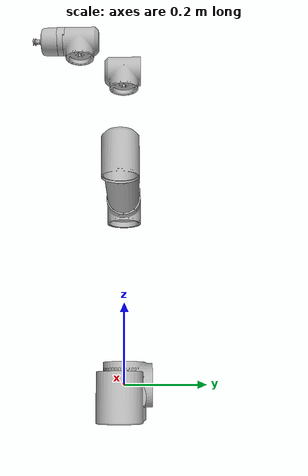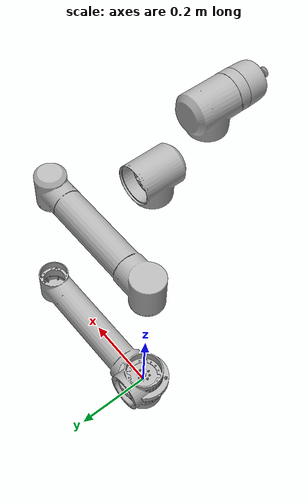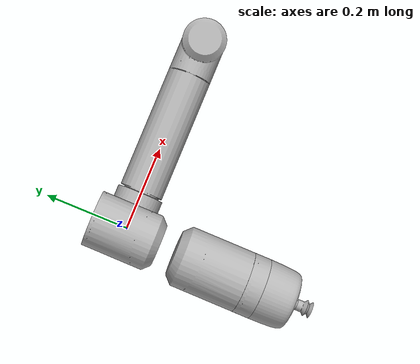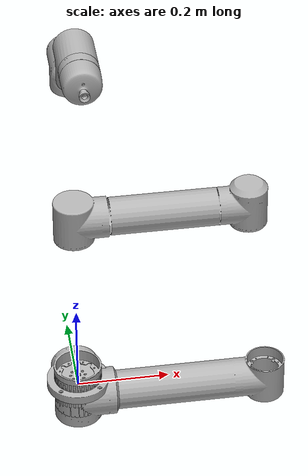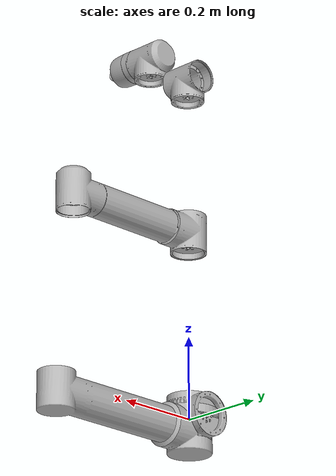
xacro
<?xml version='1.0' encoding='utf-8'?>
<robot xmlns:xacro="http://ros.org/wiki/xacro" name="utra6_850">

  <xacro:arg name="prefix" default=""/>
  <xacro:arg name="ros_namespace" default="utra"/>
  <xacro:arg name="limited" default="false"/>
  <xacro:arg name="effort_control" default="false"/>
  <xacro:arg name="attach_to_world" default="true"/>
  <xacro:arg name="add_gripper" default="true"/>

    <!-- utra6_850 -->
    <xacro:include filename="$(find utra_description)/urdf/utra6_850.urdf.xacro" />

    <xacro:if value="$(arg attach_to_world)">
      <link name="world" />
    </xacro:if>

    <joint name="$(arg prefix)world_joint" type="fixed">
      <parent link="world" />
      <child link = "$(arg prefix)base_link" />
      <origin xyz="0 0 0" rpy="0 0 0" />
    </joint>

    <xacro:if value="$(arg limited)">
      <xacro:utra6_850_urdf prefix="$(arg prefix)"
        joint1_lower_limit="${-2.0*pi}" joint1_upper_limit="${2.0*pi}"
        joint2_lower_limit="${-2.0*pi}" joint2_upper_limit="${2.0*pi}"
        joint3_lower_limit="${-2.0*pi}" joint3_upper_limit="${2.0*pi}"
        joint4_lower_limit="${-2.0*pi}" joint4_upper_limit="${2.0*pi}"
        joint5_lower_limit="${-2.0*pi}" joint5_upper_limit="${2.0*pi}"
        joint6_lower_limit="${-2.0*pi}" joint6_upper_limit="${2.0*pi}"/>
    </xacro:if>
    <xacro:unless value="$(arg limited)">
      <xacro:utra6_850_urdf prefix="$(arg prefix)"/>
    </xacro:unless>

  <xacro:include filename="$(find utra_description)/urdf/transmission.xacro" />

  <xacro:transmission_block joint_name="$(arg prefix)joint1"/>
  <xacro:transmission_block joint_name="$(arg prefix)joint2"/>
  <xacro:transmission_block joint_name="$(arg prefix)joint3"/>
  <xacro:transmission_block joint_name="$(arg prefix)joint4"/>
  <xacro:transmission_block joint_name="$(arg prefix)joint5"/>
  <xacro:transmission_block joint_name="$(arg prefix)joint6"/>

  <xacro:include filename="$(find utra_description)/urdf/utra6_850_common.gazebo.xacro" />

  <xacro:include filename="$(find utra_vacuum_gripper)/urdf/vacuum_gripper.urdf.xacro" />
  <xacro:vacuum_gripper prefix="$(arg prefix)" parent="$(arg prefix)link_6" >
      <origin xyz="0 0 -0.008" rpy="0 0 0"/>
  </xacro:vacuum_gripper>

</robot>

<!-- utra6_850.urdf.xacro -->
<robot xmlns:xacro="http://ros.org/wiki/xacro">

  <xacro:macro name="utra6_850_urdf" params="prefix
    joint1_lower_limit:=${-2.0*pi} joint1_upper_limit:=${2.0*pi}
    joint2_lower_limit:=${-2.0*pi} joint2_upper_limit:=${2.0*pi}
    joint3_lower_limit:=${-2.0*pi} joint3_upper_limit:=${2.0*pi}
    joint4_lower_limit:=${-2.0*pi} joint4_upper_limit:=${2.0*pi}
    joint5_lower_limit:=${-2.0*pi} joint5_upper_limit:=${2.0*pi}
    joint6_lower_limit:=${-2.0*pi} joint6_upper_limit:=${2.0*pi}">

    <material name="Black">  <color rgba="0.0 0.0 0.0 1.0"/> </material>
    <material name="Red">    <color rgba="0.8 0.0 0.0 1.0"/> </material>
    <material name="White">  <color rgba="1.0 1.0 1.0 1.0"/> </material>
    <material name="Silver"> <color rgba="0.7 0.7 0.7 1.0"/> </material>

    <xacro:macro name="origin_joint1"> <origin xyz="0 0 0" rpy="0 0 0" /> </xacro:macro>
    <xacro:macro name="origin_joint2"> <origin xyz="0 0 0.0935" rpy="0 0 0" /> </xacro:macro>
    <xacro:macro name="origin_joint3"> <origin xyz="0 0 0.3895" rpy="0 0 0" /> </xacro:macro>
    <xacro:macro name="origin_joint4"> <origin xyz="0 0 0.364" rpy="0 0 0" /> </xacro:macro>
    <xacro:macro name="origin_joint5"> <origin xyz="0 -0.1245 0.0965" rpy="0 0 0" /> </xacro:macro>
    <xacro:macro name="origin_joint6"> <origin xyz="0 -0.0665 0" rpy="${0.5*pi} 0 0" /> </xacro:macro>

    <xacro:macro name="origin_visual_base">  <origin xyz="0 0 0" rpy="0 0 0" /> </xacro:macro>
    <xacro:macro name="origin_visual_link_1"> <origin xyz="0 0 0" rpy="0 0 0" /> </xacro:macro>
    <xacro:macro name="origin_visual_link_2"> <origin xyz="0 0 0" rpy="0 0 0" /> </xacro:macro>
    <xacro:macro name="origin_visual_link_3"> <origin xyz="0 0 0" rpy="0 0 0" /> </xacro:macro>
    <xacro:macro name="origin_visual_link_4"> <origin xyz="0 0 0" rpy="0 0 0" /> </xacro:macro>
    <xacro:macro name="origin_visual_link_5"> <origin xyz="0 0 0" rpy="0 0 0" /> </xacro:macro>
    <xacro:macro name="origin_visual_link_6"> <origin xyz="0 0 0" rpy="0 0 0" /> </xacro:macro>

    <xacro:macro name="origin_inertial_base">  <origin xyz="0 0 0" rpy="0 0 0" /> </xacro:macro>
    <xacro:macro name="origin_inertial_link_1"> <origin xyz="0 0 0" rpy="0 0 0" /> </xacro:macro>
    <xacro:macro name="origin_inertial_link_2"> <origin xyz="0 0 0" rpy="0 0 0" /> </xacro:macro>
    <xacro:macro name="origin_inertial_link_3"> <origin xyz="0 0 0" rpy="0 0 0" /> </xacro:macro>
    <xacro:macro name="origin_inertial_link_4"> <origin xyz="0 0 0" rpy="0 0 0" /> </xacro:macro>
    <xacro:macro name="origin_inertial_link_5"> <origin xyz="0 0 0" rpy="0 0 0" /> </xacro:macro>
    <xacro:macro name="origin_inertial_link_6"> <origin xyz="0 0 0" rpy="0 0 0" /> </xacro:macro>

    <xacro:macro name="inertia_base">  <inertia ixx="0" ixy="0" ixz="0" iyy="0" iyz="0" izz="0" /> </xacro:macro>
    <xacro:macro name="inertia_link_1"> <inertia ixx="0" ixy="0" ixz="0" iyy="0" iyz="0" izz="0" /> </xacro:macro>
    <xacro:macro name="inertia_link_2"> <inertia ixx="0" ixy="0" ixz="0" iyy="0" iyz="0" izz="0" /> </xacro:macro>
    <xacro:macro name="inertia_link_3"> <inertia ixx="0" ixy="0" ixz="0" iyy="0" iyz="0" izz="0" /> </xacro:macro>
    <xacro:macro name="inertia_link_4"> <inertia ixx="0" ixy="0" ixz="0" iyy="0" iyz="0" izz="0" /> </xacro:macro>
    <xacro:macro name="inertia_link_5"> <inertia ixx="0" ixy="0" ixz="0" iyy="0" iyz="0" izz="0" /> </xacro:macro>
    <xacro:macro name="inertia_link_6"> <inertia ixx="0" ixy="0" ixz="0" iyy="0" iyz="0" izz="0" /> </xacro:macro>

    <xacro:property name="mass_base"  value="0.00001" />
    <xacro:property name="mass_link_1" value="0.00001" />
    <xacro:property name="mass_link_2" value="0.00001" />
    <xacro:property name="mass_link_3" value="0.00001" />
    <xacro:property name="mass_link_4" value="0.00001" />
    <xacro:property name="mass_link_5" value="0.00001" />
    <xacro:property name="mass_link_6" value="0.00001" />

    <xacro:property name="effort_joint1" value="0" />
    <xacro:property name="effort_joint2" value="0" />
    <xacro:property name="effort_joint3" value="0" />
    <xacro:property name="effort_joint4" value="0" />
    <xacro:property name="effort_joint5" value="0" />
    <xacro:property name="effort_joint6" value="0" />

    <xacro:property name="damping_joint1" value="0" />
    <xacro:property name="damping_joint2" value="0" />
    <xacro:property name="damping_joint3" value="0" />
    <xacro:property name="damping_joint4" value="0" />
    <xacro:property name="damping_joint5" value="0" />
    <xacro:property name="damping_joint6" value="0" />

    <xacro:property name="friction_joint1" value="0" />
    <xacro:property name="friction_joint2" value="0" />
    <xacro:property name="friction_joint3" value="0" />
    <xacro:property name="friction_joint4" value="0" />
    <xacro:property name="friction_joint5" value="0" />
    <xacro:property name="friction_joint6" value="0" />

    <link name="${prefix}base_link">
      <inertial>
        <xacro:origin_inertial_base/>
        <mass value="${mass_base}" />
        <xacro:inertia_base/>
      </inertial>
      <visual>
        <xacro:origin_visual_base/>
        <geometry> <mesh filename="package://utra_description/meshes/utra6_850/visual/base.STL" /> </geometry>
        <material name="Silver" />
      </visual>
      <collision>
        <xacro:origin_visual_base/>
        <geometry> <mesh filename="package://utra_description/meshes/utra6_850/visual/base.STL" /> </geometry>
      </collision>
    </link>

    <joint name="${prefix}joint1" type="revolute">
      <xacro:origin_joint1/>
      <parent link="${prefix}base_link" />
      <child link="${prefix}link_1" />
      <axis xyz="0 0 1" />
      <limit lower="${joint1_lower_limit}" upper="${joint1_upper_limit}" effort="${effort_joint1}" velocity="3.14" />
      <dynamics damping="${damping_joint1}" friction="${friction_joint1}" />
    </joint>

    <link name="${prefix}link_1">
      <inertial>
        <xacro:origin_inertial_link_1/>
        <mass value="${mass_link_1}" />
        <xacro:inertia_link_1/>
      </inertial>
      <visual>
        <xacro:origin_visual_link_1/>
        <geometry> <mesh filename="package://utra_description/meshes/utra6_850/visual/link1.STL" /> </geometry>
        <material name="Silver" />
      </visual>
      <collision>
        <xacro:origin_visual_link_1/>
        <geometry> <mesh filename="package://utra_description/meshes/utra6_850/visual/link1.STL" /> </geometry>
      </collision>
    </link>

    <joint name="${prefix}joint2" type="revolute">
      <xacro:origin_joint2/>
      <parent link="${prefix}link_1" />
      <child link="${prefix}link_2" />
      <axis xyz="0 -1 0" />
      <limit lower="${joint2_lower_limit}" upper="${joint2_upper_limit}" effort="${effort_joint2}" velocity="3.14" />
      <dynamics damping="${damping_joint2}" friction="${friction_joint2}" />
    </joint>

    <link name="${prefix}link_2">
      <inertial>
        <xacro:origin_inertial_link_2/>
        <mass value="${mass_link_2}" />
        <xacro:inertia_link_2/>
      </inertial>
      <visual>
        <xacro:origin_visual_link_2/>
        <geometry> <mesh filename="package://utra_description/meshes/utra6_850/visual/link2.STL" /> </geometry>
        <material name="Silver" />
      </visual>
      <collision>
        <xacro:origin_visual_link_2/>
        <geometry> <mesh filename="package://utra_description/meshes/utra6_850/visual/link2.STL" /> </geometry>
      </collision>
    </link>

    <joint name="${prefix}joint3" type="revolute">
      <xacro:origin_joint3/>
      <parent link="${prefix}link_2" />
      <child link="${prefix}link_3" />
      <axis xyz="0 1 0" />
      <limit lower="${joint3_lower_limit}" upper="${joint3_upper_limit}" effort="${effort_joint3}" velocity="3.14" />
      <dynamics damping="${damping_joint3}" friction="${friction_joint3}" />
    </joint>

    <link name="${prefix}link_3">
      <inertial>
        <xacro:origin_inertial_link_3/>
        <mass value="${mass_link_3}" />
        <xacro:inertia_link_3/>
      </inertial>
      <visual>
        <xacro:origin_visual_link_3/>
        <geometry> <mesh filename="package://utra_description/meshes/utra6_850/visual/link3.STL" /> </geometry>
        <material name="Silver" />
      </visual>
      <collision>
        <xacro:origin_visual_link_3/>
        <geometry> <mesh filename="package://utra_description/meshes/utra6_850/visual/link3.STL" /> </geometry>
      </collision>
    </link>

    <joint name="${prefix}joint4" type="revolute">
      <xacro:origin_joint4/>
      <parent link="${prefix}link_3" />
      <child link="${prefix}link_4" />
      <axis xyz="0 -1 0" />
      <limit lower="${joint4_lower_limit}" upper="${joint4_upper_limit}" effort="${effort_joint4}" velocity="3.14" />
      <dynamics damping="${damping_joint4}" friction="${friction_joint4}" />
    </joint>

    <link name="${prefix}link_4">
      <inertial>
        <xacro:origin_inertial_link_4/>
        <mass value="${mass_link_4}" />
        <xacro:inertia_link_4/>
      </inertial>
      <visual>
        <xacro:origin_visual_link_4/>
        <geometry> <mesh filename="package://utra_description/meshes/utra6_850/visual/link4.STL" /> </geometry>
        <material name="Silver" />
      </visual>
      <collision>
        <xacro:origin_visual_link_4/>
        <geometry> <mesh filename="package://utra_description/meshes/utra6_850/visual/link4.STL" /> </geometry>
      </collision>
    </link>

    <joint name="${prefix}joint5" type="revolute">
      <xacro:origin_joint5/>
      <parent link="${prefix}link_4" />
      <child link="${prefix}link_5" />
      <axis xyz="0 0 1" />
      <limit lower="${joint5_lower_limit}" upper="${joint5_upper_limit}" effort="${effort_joint5}" velocity="3.14" />
      <dynamics damping="${damping_joint5}" friction="${friction_joint5}" />
    </joint>

    <link name="${prefix}link_5">
      <inertial>
        <mass value="${mass_link_5}" />
        <xacro:origin_inertial_link_5/>
        <xacro:inertia_link_5/>
      </inertial>
      <visual>
        <xacro:origin_visual_link_5/>
        <geometry> <mesh filename="package://utra_description/meshes/utra6_850/visual/link5.STL" /> </geometry>
        <material name="Silver" />
      </visual>
      <collision>
        <xacro:origin_visual_link_5/>
        <geometry> <mesh filename="package://utra_description/meshes/utra6_850/visual/link5.STL" /> </geometry>
      </collision>
    </link>

    <joint name="${prefix}joint6" type="revolute">
      <xacro:origin_joint6/>
      <parent link="${prefix}link_5" />
      <child link="${prefix}link_6" />
      <axis xyz="0 0 1" />
      <limit lower="${joint6_lower_limit}" upper="${joint6_upper_limit}" effort="${effort_joint6}" velocity="3.14" />
      <dynamics damping="${damping_joint6}" friction="${friction_joint6}" />
    </joint>

    <link name="${prefix}link_6">
      <inertial>
        <mass value="${mass_link_6}" />
        <xacro:origin_inertial_link_6/>
        <xacro:inertia_link_6/>
      </inertial>
      <visual>
        <xacro:origin_visual_link_6/>
        <geometry> <mesh filename="package://utra_description/meshes/utra6_850/visual/link6.STL" /> </geometry>
        <material name="Silver" />
      </visual>
      <collision>
        <xacro:origin_visual_link_6/>
        <geometry> <mesh filename="package://utra_description/meshes/utra6_850/visual/link6.STL" /> </geometry>
      </collision>
    </link>

  </xacro:macro>
</robot>

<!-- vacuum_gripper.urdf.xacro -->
<robot xmlns:xacro="http://ros.org/wiki/xacro">
    <xacro:macro name="vacuum_gripper" params="prefix parent *origin">
        <link name="${prefix}vauum_gripper_base">
            <inertial>
            <mass value="0.00001" />
            <origin xyz="0 0 0" rpy="0 0 0" />
            <inertia ixx="0" ixy="0" ixz="0" iyy="0" iyz="0" izz="0" />
            </inertial>
            <visual>
            <origin xyz="0 0 0" rpy="0 0 0" />
            <geometry> <mesh filename="package://utra_vacuum_gripper/meshes/vacuum_base.STL" /> </geometry>
            <material name="Silver" />
            </visual>
            <collision>
            <origin xyz="0 0 0" rpy="0 0 0" />
            <geometry> <mesh filename="package://utra_vacuum_gripper/meshes/vacuum_base.STL" /> </geometry>
            </collision>
        </link>
        <joint name="$(arg prefix)vacuum_gripper_fix" type="fixed">
            <parent link="${parent}"/>
            <child link="$(arg prefix)vauum_gripper_base"/>
            <xacro:insert_block name="origin"/>
        </joint>
        <link name="${prefix}vauum_gripper">
            <inertial>
            <mass value="0.00001" />
            <origin xyz="0 0 0" rpy="0 0 0" />
            <inertia ixx="0" ixy="0" ixz="0" iyy="0" iyz="0" izz="0" />
            </inertial>
            <visual>
            <origin xyz="0 0 0" rpy="0 0 0" />
            <geometry> <mesh filename="package://utra_vacuum_gripper/meshes/vacuum.STL" /> </geometry>
            <material name="Silver" />
            </visual>
            <collision>
            <origin xyz="0 0 0" rpy="0 0 0" />
            <geometry> <mesh filename="package://utra_vacuum_gripper/meshes/vacuum.STL" /> </geometry>
            </collision>
        </link>
        <joint name="${prefix}vacuum_gripper_joint" type="revolute">
            <axis xyz="1 0 0" />
            <parent link="${prefix}vauum_gripper_base" />
            <child link="${prefix}vauum_gripper" />
            <origin xyz="0 0 0" rpy="0 0 0" />
            <limit effort="50" velocity="50" lower="0" upper="0" />
            <dynamics damping="0.0" friction="10"/>
        </joint>

        <gazebo>
            <plugin name="gazebo_ros_vacuum_gripper" filename="libgazebo_ros_vacuum_gripper.so">
                <robotNamespace>/utra/vacuum_gripper</robotNamespace>
                <bodyName>${prefix}vauum_gripper</bodyName>
                <topicName>grasping</topicName>
                <maxForce>50</maxForce>
                <maxDistance>0.05</maxDistance>
                <minDistance>0.01</minDistance>
            </plugin>
        </gazebo>
        <gazebo reference="${prefix}vauum_gripper">
                <mu1>50</mu1>
                <mu2>50</mu2>
    　　　　　 <minDepth>0.003</minDepth>
                <maxVel>0</maxVel>
                <kp>1000000.0</kp>
                <kd>1.0</kd>
                <material>Gazebo/Grey</material>
        </gazebo>

    </xacro:macro>
</robot>
